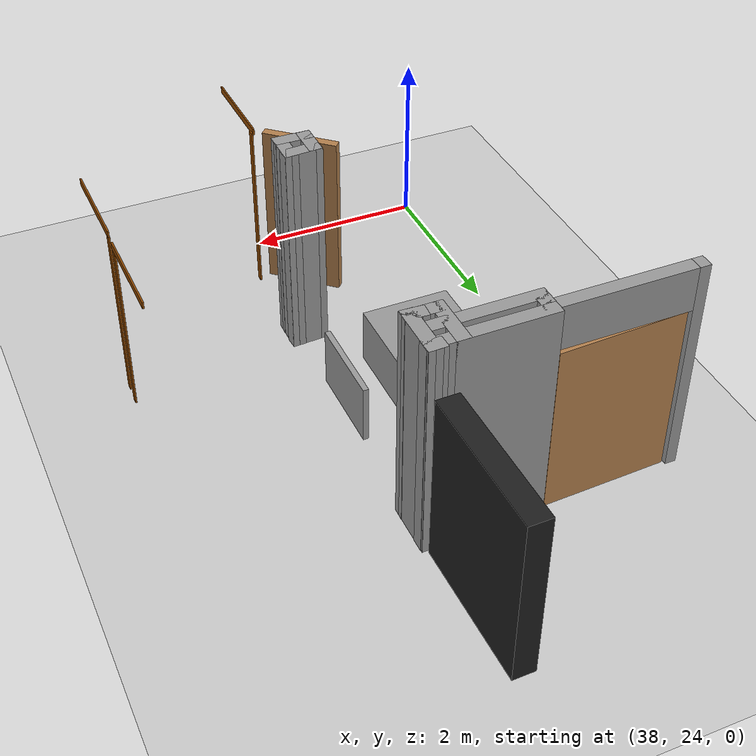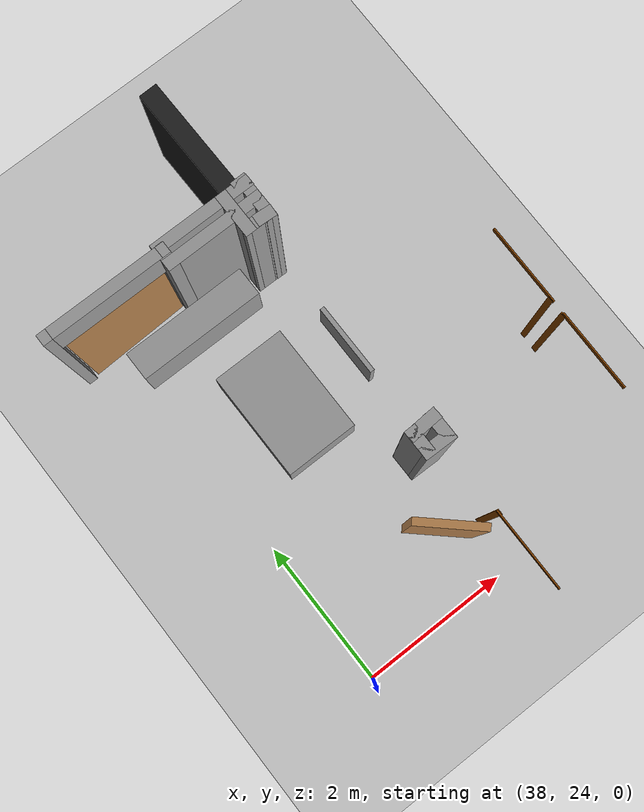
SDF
<sdf version="1.6">
 <world name="default">
  <model name="ground_plane">
   <static>1</static>
   <link name="link">
    <collision name="collision">
     <geometry><plane><normal>0 0 1</normal><size>100 100</size></plane></geometry>
     <surface><friction><ode><mu>100</mu><mu2>50</mu2></ode></friction></surface>
    </collision>
    <visual name="visual">
     <cast_shadows>0</cast_shadows>
     <geometry><plane><normal>0 0 1</normal><size>100 100</size></plane></geometry>
     <material>
      <script><uri>file://media/materials/scripts/gazebo.material</uri><name>Gazebo/Grey</name></script>
     </material>
    </visual>
   </link>
  </model>
  <model name="CVSSP">
   <pose>23.8714 24.094 0 0 -0 0</pose>
   <link name="Wall_10">
    <collision name="Wall_10_Collision">
     <geometry><box><size>0.244894 0.15 2.5</size></box></geometry>
     <pose>0 0 1.25 0 -0 0</pose>
    </collision>
    <visual name="Wall_10_Visual">
     <pose>0 0 1.25 0 -0 0</pose>
     <geometry><box><size>0.244894 0.15 2.5</size></box></geometry>
     <material>
      <script><uri>file://media/materials/scripts/gazebo.material</uri><name>Gazebo/Grey</name></script>
      <ambient>1 1 1 1</ambient>
     </material>
    </visual>
    <pose>16.3427 4.74414 0 0 -0 3.0813</pose>
   </link>
   <link name="Wall_103">
    <pose>14.4193 5.12692 0 0 -0 3.13861</pose>
    <visual name="Wall_103_Visual_0">
     <pose>-0.803949 0 1.25 0 -0 0</pose>
     <geometry><box><size>0.113401 0.15 2.5</size></box></geometry>
     <material>
      <script><uri>file://media/materials/scripts/gazebo.material</uri><name>Gazebo/Grey</name></script>
      <ambient>1 1 1 1</ambient>
     </material>
    </visual>
    <collision name="Wall_103_Collision_0">
     <geometry><box><size>0.113401 0.15 2.5</size></box></geometry>
     <pose>-0.803949 0 1.25 0 -0 0</pose>
    </collision>
    <visual name="Wall_103_Visual_1">
     <pose>0.799121 0 1.25 0 -0 0</pose>
     <geometry><box><size>0.123058 0.15 2.5</size></box></geometry>
     <material>
      <script><uri>file://media/materials/scripts/gazebo.material</uri><name>Gazebo/Grey</name></script>
      <ambient>1 1 1 1</ambient>
     </material>
    </visual>
    <collision name="Wall_103_Collision_1">
     <geometry><box><size>0.123058 0.15 2.5</size></box></geometry>
     <pose>0.799121 0 1.25 0 -0 0</pose>
    </collision>
    <visual name="Wall_103_Visual_2">
     <pose>-0.004828 0 2.25 0 -0 0</pose>
     <geometry><box><size>1.48484 0.15 0.5</size></box></geometry>
     <material>
      <script><uri>file://media/materials/scripts/gazebo.material</uri><name>Gazebo/Grey</name></script>
      <ambient>1 1 1 1</ambient>
     </material>
    </visual>
    <collision name="Wall_103_Collision_2">
     <geometry><box><size>1.48484 0.15 0.5</size></box></geometry>
     <pose>-0.004828 0 2.25 0 -0 0</pose>
    </collision>
   </link>
   <link name="Wall_105">
    <collision name="Wall_105_Collision">
     <geometry><box><size>0.321526 0.15 2.5</size></box></geometry>
     <pose>0 0 1.25 0 -0 0</pose>
    </collision>
    <visual name="Wall_105_Visual">
     <pose>0 0 1.25 0 -0 0</pose>
     <geometry><box><size>0.321526 0.15 2.5</size></box></geometry>
     <material>
      <script><uri>file://media/materials/scripts/gazebo.material</uri><name>Gazebo/Grey</name></script>
      <ambient>1 1 1 1</ambient>
     </material>
    </visual>
    <pose>15.205 5.04453 0 0 0 -1.5708</pose>
   </link>
   <link name="Wall_106">
    <collision name="Wall_106_Collision">
     <geometry><box><size>1.33354 0.15 2.5</size></box></geometry>
     <pose>0 0 1.25 0 -0 0</pose>
    </collision>
    <visual name="Wall_106_Visual">
     <pose>0 0 1.25 0 -0 0</pose>
     <geometry><box><size>1.33354 0.15 2.5</size></box></geometry>
     <material>
      <script><uri>file://media/materials/scripts/gazebo.material</uri><name>Gazebo/Grey</name></script>
      <ambient>1 1 1 1</ambient>
     </material>
    </visual>
    <pose>15.7968 4.95877 0 0 -0 0</pose>
   </link>
   <link name="Wall_108">
    <collision name="Wall_108_Collision">
     <geometry><box><size>0.336995 0.15 2.5</size></box></geometry>
     <pose>0 0 1.25 0 -0 0</pose>
    </collision>
    <visual name="Wall_108_Visual">
     <pose>0 0 1.25 0 -0 0</pose>
     <geometry><box><size>0.336995 0.15 2.5</size></box></geometry>
     <material>
      <script><uri>file://media/materials/scripts/gazebo.material</uri><name>Gazebo/Grey</name></script>
      <ambient>1 1 1 1</ambient>
     </material>
    </visual>
    <pose>16.2019 4.74711 0 0 -0 3.1404</pose>
   </link>
   <link name="Wall_109">
    <collision name="Wall_109_Collision">
     <geometry><box><size>0.578815 0.15 2.5</size></box></geometry>
     <pose>0 0 1.25 0 -0 0</pose>
    </collision>
    <visual name="Wall_109_Visual">
     <pose>0 0 1.25 0 -0 0</pose>
     <geometry><box><size>0.578815 0.15 2.5</size></box></geometry>
     <material>
      <script><uri>file://media/materials/scripts/gazebo.material</uri><name>Gazebo/Grey</name></script>
      <ambient>1 1 1 1</ambient>
     </material>
    </visual>
    <pose>16.1084 4.96163 0 0 -0 1.5708</pose>
   </link>
   <link name="Wall_110">
    <collision name="Wall_110_Collision">
     <geometry><box><size>0.435877 0.15 2.5</size></box></geometry>
     <pose>0 0 1.25 0 -0 0</pose>
    </collision>
    <visual name="Wall_110_Visual">
     <pose>0 0 1.25 0 -0 0</pose>
     <geometry><box><size>0.435877 0.15 2.5</size></box></geometry>
     <material>
      <script><uri>file://media/materials/scripts/gazebo.material</uri><name>Gazebo/Grey</name></script>
      <ambient>1 1 1 1</ambient>
     </material>
    </visual>
    <pose>16.2513 5.17604 0 0 -0 0</pose>
   </link>
   <link name="Wall_112">
    <collision name="Wall_112_Collision">
     <geometry><box><size>1.05344 0.15 2.5</size></box></geometry>
     <pose>0 0 1.25 0 -0 0</pose>
    </collision>
    <visual name="Wall_112_Visual">
     <pose>0 0 1.25 0 -0 0</pose>
     <geometry><box><size>1.05344 0.15 2.5</size></box></geometry>
     <material>
      <script><uri>file://media/materials/scripts/gazebo.material</uri><name>Gazebo/Grey</name></script>
      <ambient>1 1 1 1</ambient>
     </material>
    </visual>
    <pose>15.6567 5.17604 0 0 -0 3.14159</pose>
   </link>
   <link name="Wall_729">
    <collision name="Wall_729_Collision">
     <geometry><box><size>0.409263 0.15 2.5</size></box></geometry>
     <pose>0 0 1.25 0 -0 0</pose>
    </collision>
    <visual name="Wall_729_Visual">
     <pose>0 0 1.25 0 -0 0</pose>
     <geometry><box><size>0.409263 0.15 2.5</size></box></geometry>
     <material>
      <script><uri>file://media/materials/scripts/gazebo.material</uri><name>Gazebo/Grey</name></script>
      <ambient>1 1 1 1</ambient>
     </material>
    </visual>
    <pose>16.3949 1.72388 0 0 -0 1.57329</pose>
   </link>
   <link name="Wall_730">
    <collision name="Wall_730_Collision">
     <geometry><box><size>0.423174 0.15 2.5</size></box></geometry>
     <pose>0 0 1.25 0 -0 0</pose>
    </collision>
    <visual name="Wall_730_Visual">
     <pose>0 0 1.25 0 -0 0</pose>
     <geometry><box><size>0.423174 0.15 2.5</size></box></geometry>
     <material>
      <script><uri>file://media/materials/scripts/gazebo.material</uri><name>Gazebo/Grey</name></script>
      <ambient>1 1 1 1</ambient>
     </material>
    </visual>
    <pose>16.2619 1.84596 0 0 0 -3.08621</pose>
   </link>
   <link name="Wall_731">
    <collision name="Wall_731_Collision">
     <geometry><box><size>0.388455 0.15 2.5</size></box></geometry>
     <pose>0 0 1.25 0 -0 0</pose>
    </collision>
    <visual name="Wall_731_Visual">
     <pose>0 0 1.25 0 -0 0</pose>
     <geometry><box><size>0.388455 0.15 2.5</size></box></geometry>
     <material>
      <script><uri>file://media/materials/scripts/gazebo.material</uri><name>Gazebo/Grey</name></script>
      <ambient>1 1 1 1</ambient>
     </material>
    </visual>
    <pose>16.1221 1.71917 0 0 0 -1.56809</pose>
   </link>
   <link name="Wall_732">
    <collision name="Wall_732_Collision">
     <geometry><box><size>0.422814 0.15 2.5</size></box></geometry>
     <pose>0 0 1.25 0 -0 0</pose>
    </collision>
    <visual name="Wall_732_Visual">
     <pose>0 0 1.25 0 -0 0</pose>
     <geometry><box><size>0.422814 0.15 2.5</size></box></geometry>
     <material>
      <script><uri>file://media/materials/scripts/gazebo.material</uri><name>Gazebo/Grey</name></script>
      <ambient>1 1 1 1</ambient>
     </material>
    </visual>
    <pose>16.2588 1.5934 0 0 0 -0.020841</pose>
   </link>
   <link name="Wall_8">
    <collision name="Wall_8_Collision">
     <geometry><box><size>0.200072 0.15 2.5</size></box></geometry>
     <pose>0 0 1.25 0 -0 0</pose>
    </collision>
    <visual name="Wall_8_Visual">
     <pose>0 0 1.25 0 -0 0</pose>
     <geometry><box><size>0.200072 0.15 2.5</size></box></geometry>
     <material>
      <script><uri>file://media/materials/scripts/gazebo.material</uri><name>Gazebo/Grey</name></script>
      <ambient>1 1 1 1</ambient>
     </material>
    </visual>
    <pose>16.3651 5.20082 0 0 -0 0.028929</pose>
   </link>
   <link name="Wall_9">
    <collision name="Wall_9_Collision">
     <geometry><box><size>0.610308 0.15 2.5</size></box></geometry>
     <pose>0 0 1.25 0 -0 0</pose>
    </collision>
    <visual name="Wall_9_Visual">
     <pose>0 0 1.25 0 -0 0</pose>
     <geometry><box><size>0.610308 0.15 2.5</size></box></geometry>
     <material>
      <script><uri>file://media/materials/scripts/gazebo.material</uri><name>Gazebo/Grey</name></script>
      <ambient>1 1 1 1</ambient>
     </material>
    </visual>
    <pose>16.3901 4.97141 0 0 0 -1.5708</pose>
   </link>
   <static>1</static>
  </model>
  <model name="ply_wood_under_box">
   <link name="link">
    <inertial>
     <mass>1</mass>
     <inertia>
      <ixx>0.166667</ixx>
      <ixy>0</ixy>
      <ixz>0</ixz>
      <iyy>0.166667</iyy>
      <iyz>0</iyz>
      <izz>0.166667</izz>
     </inertia>
    </inertial>
    <gravity>0</gravity>
    <visual name="visual">
     <geometry><box><size>1 1.50222 0.628617</size></box></geometry>
     <material>
      <script><name>Gazebo/Grey</name><uri>file://media/materials/scripts/gazebo.material</uri></script>
      <shader type="pixel"><normal_map>__default__</normal_map></shader>
     </material>
    </visual>
    <collision name="collision">
     <geometry><box><size>1 1.50222 0.628617</size></box></geometry>
     <surface>
      <friction>
       <ode><mu>1</mu><mu2>1</mu2><fdir1>0 0 0</fdir1><slip1>0</slip1><slip2>0</slip2></ode>
       <torsional>
        <coefficient>1</coefficient>
        <patch_radius>0</patch_radius>
        <surface_radius>0</surface_radius>
        <use_patch_radius>1</use_patch_radius>
        <ode><slip>0</slip></ode>
       </torsional>
      </friction>
      <bounce><restitution_coefficient>0</restitution_coefficient><threshold>1e+06</threshold></bounce>
      <contact>
       <collide_without_contact>0</collide_without_contact>
       <collide_without_contact_bitmask>1</collide_without_contact_bitmask>
       <collide_bitmask>1</collide_bitmask>
       <ode>
        <soft_cfm>0</soft_cfm>
        <soft_erp>0.2</soft_erp>
        <kp>1e+13</kp>
        <kd>1</kd>
        <max_vel>0.01</max_vel>
        <min_depth>0</min_depth>
       </ode>
       <bullet>
        <split_impulse>1</split_impulse>
        <split_impulse_penetration_threshold>-0.01</split_impulse_penetration_threshold>
        <soft_cfm>0</soft_cfm>
        <soft_erp>0.2</soft_erp>
        <kp>1e+13</kp>
        <kd>1</kd>
       </bullet>
      </contact>
     </surface>
    </collision>
   </link>
   <static>1</static>
   <pose>39.2228 27.3126 0.362453 0 -0 0</pose>
  </model>
  <model name="plastic_box_0_clone_0">
   <link name="Wall">
    <pose>0 0 0.1985 0 -0 0</pose>
    <inertial>
     <mass>5</mass>
     <inertia><ixx>0.1022</ixx><iyy>0.4107</iyy><izz>0.3815</izz><ixy>0</ixy><ixz>0</ixz><iyz>0</iyz></inertia>
    </inertial>
    <gravity>0</gravity>
    <visual name="Wall_Visual">
     <geometry><box><size>1.75 0.4 0.75</size></box></geometry>
     <material>
      <script><uri>file://media/materials/scripts/gazebo.material</uri><name>Gazebo/Grey</name></script>
      <ambient>1 1 1 1</ambient>
      <shader type="pixel"><normal_map>__default__</normal_map></shader>
      <diffuse>0.7 0.7 0.7 1</diffuse>
      <specular>0.01 0.01 0.01 1</specular>
      <emissive>0 0 0 1</emissive>
     </material>
    </visual>
    <collision name="Wall_Collision">
     <geometry><box><size>1.75 0.4 0.75</size></box></geometry>
     <surface>
      <friction>
       <ode><mu>1</mu><mu2>1</mu2><fdir1>0 0 0</fdir1><slip1>0</slip1><slip2>0</slip2></ode>
       <torsional>
        <coefficient>1</coefficient>
        <patch_radius>0</patch_radius>
        <surface_radius>0</surface_radius>
        <use_patch_radius>1</use_patch_radius>
        <ode><slip>0</slip></ode>
       </torsional>
      </friction>
      <bounce><restitution_coefficient>0</restitution_coefficient><threshold>1e+06</threshold></bounce>
      <contact>
       <collide_without_contact>0</collide_without_contact>
       <collide_without_contact_bitmask>1</collide_without_contact_bitmask>
       <collide_bitmask>1</collide_bitmask>
       <ode>
        <soft_cfm>0</soft_cfm>
        <soft_erp>0.2</soft_erp>
        <kp>1e+13</kp>
        <kd>1</kd>
        <max_vel>0.01</max_vel>
        <min_depth>0</min_depth>
       </ode>
       <bullet>
        <split_impulse>1</split_impulse>
        <split_impulse_penetration_threshold>-0.01</split_impulse_penetration_threshold>
        <soft_cfm>0</soft_cfm>
        <soft_erp>0.2</soft_erp>
        <kp>1e+13</kp>
        <kd>1</kd>
       </bullet>
      </contact>
     </surface>
    </collision>
   </link>
   <static>1</static>
   <pose>38.9213 28.7657 0.249906 0 -0 0</pose>
  </model>
  <model name="basic_ply_door_corrected_clone_0_clone_clone_1">
   <link name="link">
    <pose>-0 0 1.00385 0 -0 0</pose>
    <inertial>
     <mass>0.5167</mass>
     <inertia>
      <ixx>0.00086117</ixx>
      <ixy>0</ixy>
      <ixz>0</ixz>
      <iyy>0.00086117</iyy>
      <iyz>0</iyz>
      <izz>0.00086117</izz>
     </inertia>
    </inertial>
    <gravity>0</gravity>
    <visual name="visual">
     <geometry><box><size>0.88 0.1 1.96</size></box></geometry>
     <material>
      <script><uri>file://media/materials/scripts/gazebo.material</uri><name>Gazebo/Wood</name></script>
      <shader type="pixel"><normal_map>__default__</normal_map></shader>
      <ambient>1 1 1 1</ambient>
      <diffuse>1 1 1 1</diffuse>
      <specular>0.2 0.2 0.2 1</specular>
      <emissive>0 0 0 1</emissive>
     </material>
    </visual>
    <collision name="collision">
     <geometry><box><size>0.88 0.1 1.96</size></box></geometry>
     <surface>
      <friction>
       <ode><mu>1</mu><mu2>1</mu2><fdir1>0 0 0</fdir1><slip1>0</slip1><slip2>0</slip2></ode>
       <torsional>
        <coefficient>1</coefficient>
        <patch_radius>0</patch_radius>
        <surface_radius>0.01</surface_radius>
        <use_patch_radius>0</use_patch_radius>
        <ode><slip>0</slip></ode>
       </torsional>
      </friction>
      <bounce><restitution_coefficient>0</restitution_coefficient><threshold>1e+06</threshold></bounce>
      <contact>
       <collide_without_contact>0</collide_without_contact>
       <collide_without_contact_bitmask>1</collide_without_contact_bitmask>
       <collide_bitmask>1</collide_bitmask>
       <ode>
        <soft_cfm>0</soft_cfm>
        <soft_erp>0.2</soft_erp>
        <kp>100000</kp>
        <kd>100</kd>
        <max_vel>100</max_vel>
        <min_depth>0.001</min_depth>
       </ode>
       <bullet>
        <split_impulse>1</split_impulse>
        <split_impulse_penetration_threshold>-0.01</split_impulse_penetration_threshold>
        <soft_cfm>0</soft_cfm>
        <soft_erp>0.2</soft_erp>
        <kp>100000</kp>
        <kd>100</kd>
       </bullet>
      </contact>
     </surface>
    </collision>
   </link>
   <static>1</static>
   <pose>39.7565 24.918 -0.00101 0 -0 2.40024</pose>
  </model>
  <model name="metal_door_wide">
   <link name="link">
    <inertial>
     <mass>1</mass>
     <inertia>
      <ixx>0.166667</ixx>
      <ixy>0</ixy>
      <ixz>0</ixz>
      <iyy>0.166667</iyy>
      <iyz>0</iyz>
      <izz>0.166667</izz>
     </inertia>
    </inertial>
    <gravity>0</gravity>
    <visual name="visual">
     <geometry><box><size>0.249393 1.61603 1.94787</size></box></geometry>
     <material>
      <script><name>Gazebo/Black</name><uri>file://media/materials/scripts/gazebo.material</uri></script>
      <shader type="pixel"><normal_map>__default__</normal_map></shader>
      <ambient>0.01 0.001 0.001 1</ambient>
      <diffuse>0.7 0.7 0.7 1</diffuse>
      <specular>0.01 0.01 0.01 1</specular>
      <emissive>0 0 0 1</emissive>
     </material>
    </visual>
    <collision name="collision">
     <geometry><box><size>0.249393 1.61603 1.94787</size></box></geometry>
     <surface>
      <friction>
       <ode><mu>1</mu><mu2>1</mu2><fdir1>0 0 0</fdir1><slip1>0</slip1><slip2>0</slip2></ode>
       <torsional>
        <coefficient>1</coefficient>
        <patch_radius>0</patch_radius>
        <surface_radius>0</surface_radius>
        <use_patch_radius>1</use_patch_radius>
        <ode><slip>0</slip></ode>
       </torsional>
      </friction>
      <bounce><restitution_coefficient>0</restitution_coefficient><threshold>1e+06</threshold></bounce>
      <contact>
       <collide_without_contact>0</collide_without_contact>
       <collide_without_contact_bitmask>1</collide_without_contact_bitmask>
       <collide_bitmask>1</collide_bitmask>
       <ode>
        <soft_cfm>0</soft_cfm>
        <soft_erp>0.2</soft_erp>
        <kp>1e+13</kp>
        <kd>1</kd>
        <max_vel>0.01</max_vel>
        <min_depth>0</min_depth>
       </ode>
       <bullet>
        <split_impulse>1</split_impulse>
        <split_impulse_penetration_threshold>-0.01</split_impulse_penetration_threshold>
        <soft_cfm>0</soft_cfm>
        <soft_erp>0.2</soft_erp>
        <kp>1e+13</kp>
        <kd>1</kd>
       </bullet>
      </contact>
     </surface>
    </collision>
   </link>
   <static>1</static>
   <pose>40.1518 30.2272 1.00357 -0.00287 -0.001978 0.014033</pose>
  </model>
  <model name="metal_radiator">
   <link name="link">
    <inertial>
     <mass>1</mass>
     <inertia>
      <ixx>0.166667</ixx>
      <ixy>0</ixy>
      <ixz>0</ixz>
      <iyy>0.166667</iyy>
      <iyz>0</iyz>
      <izz>0.166667</izz>
     </inertia>
    </inertial>
    <gravity>0</gravity>
    <visual name="visual">
     <geometry><box><size>0.062327 1 0.668502</size></box></geometry>
     <material>
      <script><name>Gazebo/Grey</name><uri>file://media/materials/scripts/gazebo.material</uri></script>
      <shader type="pixel"><normal_map>__default__</normal_map></shader>
      <emissive>0 0 0 1</emissive>
      <ambient>1 1 1 1</ambient>
      <diffuse>0.7 0.7 0.7 1</diffuse>
      <specular>0.01 0.01 0.01 1</specular>
      <lighting>0</lighting>
     </material>
    </visual>
    <collision name="collision">
     <geometry><box><size>0.062327 1 0.668502</size></box></geometry>
     <surface>
      <friction>
       <ode><mu>1</mu><mu2>1</mu2><fdir1>0 0 0</fdir1><slip1>0</slip1><slip2>0</slip2></ode>
       <torsional>
        <coefficient>1</coefficient>
        <patch_radius>0</patch_radius>
        <surface_radius>0</surface_radius>
        <use_patch_radius>1</use_patch_radius>
        <ode><slip>0</slip></ode>
       </torsional>
      </friction>
      <bounce><restitution_coefficient>0</restitution_coefficient><threshold>1e+06</threshold></bounce>
      <contact>
       <collide_without_contact>0</collide_without_contact>
       <collide_without_contact_bitmask>1</collide_without_contact_bitmask>
       <collide_bitmask>1</collide_bitmask>
       <ode>
        <soft_cfm>0</soft_cfm>
        <soft_erp>0.2</soft_erp>
        <kp>1e+13</kp>
        <kd>1</kd>
        <max_vel>0.01</max_vel>
        <min_depth>0</min_depth>
       </ode>
       <bullet>
        <split_impulse>1</split_impulse>
        <split_impulse_penetration_threshold>-0.01</split_impulse_penetration_threshold>
        <soft_cfm>0</soft_cfm>
        <soft_erp>0.2</soft_erp>
        <kp>1e+13</kp>
        <kd>1</kd>
       </bullet>
      </contact>
     </surface>
    </collision>
   </link>
   <static>1</static>
   <pose>40.2852 27.4289 0.545875 0 -0 0</pose>
  </model>
  <model name="basic_ply_door_corrected_wider">
   <link name="link">
    <pose>0.319611 -0 1.00385 0 -0 0.034884</pose>
    <inertial>
     <mass>0.5167</mass>
     <inertia>
      <ixx>0.00086117</ixx>
      <ixy>0</ixy>
      <ixz>0</ixz>
      <iyy>0.00086117</iyy>
      <iyz>0</iyz>
      <izz>0.00086117</izz>
     </inertia>
    </inertial>
    <visual name="visual">
     <geometry><box><size>1.4 0.1 1.96</size></box></geometry>
     <material>
      <script><uri>file://media/materials/scripts/gazebo.material</uri><name>Gazebo/Wood</name></script>
      <shader type="pixel"><normal_map>__default__</normal_map></shader>
      <ambient>1 1 1 1</ambient>
      <diffuse>1 1 1 1</diffuse>
      <specular>0.2 0.2 0.2 1</specular>
      <emissive>0 0 0 1</emissive>
     </material>
    </visual>
    <collision name="collision">
     <geometry><box><size>0.88 0.1 1.96</size></box></geometry>
     <surface>
      <friction>
       <ode><mu>1</mu><mu2>1</mu2><fdir1>0 0 0</fdir1><slip1>0</slip1><slip2>0</slip2></ode>
       <torsional>
        <coefficient>1</coefficient>
        <patch_radius>0</patch_radius>
        <surface_radius>0.01</surface_radius>
        <use_patch_radius>0</use_patch_radius>
        <ode><slip>0</slip></ode>
       </torsional>
      </friction>
      <bounce><restitution_coefficient>0</restitution_coefficient><threshold>1e+06</threshold></bounce>
      <contact>
       <collide_without_contact>0</collide_without_contact>
       <collide_without_contact_bitmask>1</collide_without_contact_bitmask>
       <collide_bitmask>1</collide_bitmask>
       <ode>
        <soft_cfm>0</soft_cfm>
        <soft_erp>0.2</soft_erp>
        <kp>100000</kp>
        <kd>100</kd>
        <max_vel>100</max_vel>
        <min_depth>0.001</min_depth>
       </ode>
       <bullet>
        <split_impulse>1</split_impulse>
        <split_impulse_penetration_threshold>-0.01</split_impulse_penetration_threshold>
        <soft_cfm>0</soft_cfm>
        <soft_erp>0.2</soft_erp>
        <kp>100000</kp>
        <kd>100</kd>
       </bullet>
      </contact>
     </surface>
    </collision>
   </link>
   <static>1</static>
   <pose>37.9694 29.2523 -0 0 -0 0</pose>
  </model>
  <model name="oak_frame_0_clone">
   <link name="link">
    <inertial>
     <mass>1</mass>
     <inertia>
      <ixx>0.166667</ixx>
      <ixy>0</ixy>
      <ixz>0</ixz>
      <iyy>0.166667</iyy>
      <iyz>0</iyz>
      <izz>0.166667</izz>
     </inertia>
    </inertial>
    <visual name="visual">
     <geometry><box><size>0.018685 0.076446 2.026</size></box></geometry>
     <material>
      <script><name>Gazebo/Grey</name><uri>file://media/materials/scripts/gazebo.material</uri></script>
      <shader type="pixel"><normal_map>__default__</normal_map></shader>
      <diffuse>0.58 0.29 0 0</diffuse>
      <ambient>0.58 0.29 0 1</ambient>
      <specular>0.01 0.01 0.01 1</specular>
      <emissive>0 0 0 1</emissive>
     </material>
    </visual>
    <collision name="collision">
     <geometry><box><size>0.018685 0.076446 2.026</size></box></geometry>
     <surface>
      <friction>
       <ode><mu>1</mu><mu2>1</mu2><fdir1>0 0 0</fdir1><slip1>0</slip1><slip2>0</slip2></ode>
       <torsional>
        <coefficient>1</coefficient>
        <patch_radius>0</patch_radius>
        <surface_radius>0</surface_radius>
        <use_patch_radius>1</use_patch_radius>
        <ode><slip>0</slip></ode>
       </torsional>
      </friction>
      <bounce><restitution_coefficient>0</restitution_coefficient><threshold>1e+06</threshold></bounce>
      <contact>
       <collide_without_contact>0</collide_without_contact>
       <collide_without_contact_bitmask>1</collide_without_contact_bitmask>
       <collide_bitmask>1</collide_bitmask>
       <ode>
        <soft_cfm>0</soft_cfm>
        <soft_erp>0.2</soft_erp>
        <kp>1e+13</kp>
        <kd>1</kd>
        <max_vel>0.01</max_vel>
        <min_depth>0</min_depth>
       </ode>
       <bullet>
        <split_impulse>1</split_impulse>
        <split_impulse_penetration_threshold>-0.01</split_impulse_penetration_threshold>
        <soft_cfm>0</soft_cfm>
        <soft_erp>0.2</soft_erp>
        <kp>1e+13</kp>
        <kd>1</kd>
       </bullet>
      </contact>
     </surface>
    </collision>
   </link>
   <static>1</static>
   <pose>40.2515 24.6922 1.03242 0 -0 0</pose>
  </model>
  <model name="oak_frame_0_clone_0">
   <link name="link">
    <inertial>
     <mass>1</mass>
     <inertia>
      <ixx>0.166667</ixx>
      <ixy>0</ixy>
      <ixz>0</ixz>
      <iyy>0.166667</iyy>
      <iyz>0</iyz>
      <izz>0.166667</izz>
     </inertia>
    </inertial>
    <visual name="visual">
     <geometry><box><size>0.018685 0.076446 1.08038</size></box></geometry>
     <material>
      <script><name>Gazebo/Grey</name><uri>file://media/materials/scripts/gazebo.material</uri></script>
      <shader type="pixel"><normal_map>__default__</normal_map></shader>
      <diffuse>0.58 0.29 0 0</diffuse>
      <ambient>0.58 0.29 0 1</ambient>
      <specular>0.01 0.01 0.01 1</specular>
      <emissive>0 0 0 1</emissive>
     </material>
    </visual>
    <collision name="collision">
     <geometry><box><size>0.018685 0.076446 1.08038</size></box></geometry>
     <surface>
      <friction>
       <ode><mu>1</mu><mu2>1</mu2><fdir1>0 0 0</fdir1><slip1>0</slip1><slip2>0</slip2></ode>
       <torsional>
        <coefficient>1</coefficient>
        <patch_radius>0</patch_radius>
        <surface_radius>0</surface_radius>
        <use_patch_radius>1</use_patch_radius>
        <ode><slip>0</slip></ode>
       </torsional>
      </friction>
      <bounce><restitution_coefficient>0</restitution_coefficient><threshold>1e+06</threshold></bounce>
      <contact>
       <collide_without_contact>0</collide_without_contact>
       <collide_without_contact_bitmask>1</collide_without_contact_bitmask>
       <collide_bitmask>1</collide_bitmask>
       <ode>
        <soft_cfm>0</soft_cfm>
        <soft_erp>0.2</soft_erp>
        <kp>1e+13</kp>
        <kd>1</kd>
        <max_vel>0.01</max_vel>
        <min_depth>0</min_depth>
       </ode>
       <bullet>
        <split_impulse>1</split_impulse>
        <split_impulse_penetration_threshold>-0.01</split_impulse_penetration_threshold>
        <soft_cfm>0</soft_cfm>
        <soft_erp>0.2</soft_erp>
        <kp>1e+13</kp>
        <kd>1</kd>
       </bullet>
      </contact>
     </surface>
    </collision>
   </link>
   <static>1</static>
   <pose>40.2332 24.1894 2.05002 -1.55236 0 0</pose>
  </model>
  <model name="oak_frame_0_clone_clone">
   <link name="link">
    <inertial>
     <mass>1</mass>
     <inertia>
      <ixx>0.166667</ixx>
      <ixy>0</ixy>
      <ixz>0</ixz>
      <iyy>0.166667</iyy>
      <iyz>0</iyz>
      <izz>0.166667</izz>
     </inertia>
    </inertial>
    <visual name="visual">
     <geometry><box><size>0.018685 0.076446 2.026</size></box></geometry>
     <material>
      <script><name>Gazebo/Grey</name><uri>file://media/materials/scripts/gazebo.material</uri></script>
      <shader type="pixel"><normal_map>__default__</normal_map></shader>
      <diffuse>0.58 0.29 0 0</diffuse>
      <ambient>0.58 0.29 0 1</ambient>
      <specular>0.01 0.01 0.01 1</specular>
      <emissive>0 0 0 1</emissive>
     </material>
    </visual>
    <collision name="collision">
     <geometry><box><size>0.018685 0.076446 2.026</size></box></geometry>
     <surface>
      <friction>
       <ode><mu>1</mu><mu2>1</mu2><fdir1>0 0 0</fdir1><slip1>0</slip1><slip2>0</slip2></ode>
       <torsional>
        <coefficient>1</coefficient>
        <patch_radius>0</patch_radius>
        <surface_radius>0</surface_radius>
        <use_patch_radius>1</use_patch_radius>
        <ode><slip>0</slip></ode>
       </torsional>
      </friction>
      <bounce><restitution_coefficient>0</restitution_coefficient><threshold>1e+06</threshold></bounce>
      <contact>
       <collide_without_contact>0</collide_without_contact>
       <collide_without_contact_bitmask>1</collide_without_contact_bitmask>
       <collide_bitmask>1</collide_bitmask>
       <ode>
        <soft_cfm>0</soft_cfm>
        <soft_erp>0.2</soft_erp>
        <kp>1e+13</kp>
        <kd>1</kd>
        <max_vel>0.01</max_vel>
        <min_depth>0</min_depth>
       </ode>
       <bullet>
        <split_impulse>1</split_impulse>
        <split_impulse_penetration_threshold>-0.01</split_impulse_penetration_threshold>
        <soft_cfm>0</soft_cfm>
        <soft_erp>0.2</soft_erp>
        <kp>1e+13</kp>
        <kd>1</kd>
       </bullet>
      </contact>
     </surface>
    </collision>
   </link>
   <static>1</static>
   <pose>42.2231 25.9652 1.03242 0 -0 0</pose>
  </model>
  <model name="oak_frame_0_clone_clone_1">
   <link name="link">
    <inertial>
     <mass>1</mass>
     <inertia>
      <ixx>0.166667</ixx>
      <ixy>0</ixy>
      <ixz>0</ixz>
      <iyy>0.166667</iyy>
      <iyz>0</iyz>
      <izz>0.166667</izz>
     </inertia>
    </inertial>
    <visual name="visual">
     <geometry><box><size>0.018685 0.076446 2.026</size></box></geometry>
     <material>
      <script><name>Gazebo/Grey</name><uri>file://media/materials/scripts/gazebo.material</uri></script>
      <shader type="pixel"><normal_map>__default__</normal_map></shader>
      <diffuse>0.58 0.29 0 0</diffuse>
      <ambient>0.58 0.29 0 1</ambient>
      <specular>0.01 0.01 0.01 1</specular>
      <emissive>0 0 0 1</emissive>
     </material>
    </visual>
    <collision name="collision">
     <geometry><box><size>0.018685 0.076446 2.026</size></box></geometry>
     <surface>
      <friction>
       <ode><mu>1</mu><mu2>1</mu2><fdir1>0 0 0</fdir1><slip1>0</slip1><slip2>0</slip2></ode>
       <torsional>
        <coefficient>1</coefficient>
        <patch_radius>0</patch_radius>
        <surface_radius>0</surface_radius>
        <use_patch_radius>1</use_patch_radius>
        <ode><slip>0</slip></ode>
       </torsional>
      </friction>
      <bounce><restitution_coefficient>0</restitution_coefficient><threshold>1e+06</threshold></bounce>
      <contact>
       <collide_without_contact>0</collide_without_contact>
       <collide_without_contact_bitmask>1</collide_without_contact_bitmask>
       <collide_bitmask>1</collide_bitmask>
       <ode>
        <soft_cfm>0</soft_cfm>
        <soft_erp>0.2</soft_erp>
        <kp>1e+13</kp>
        <kd>1</kd>
        <max_vel>0.01</max_vel>
        <min_depth>0</min_depth>
       </ode>
       <bullet>
        <split_impulse>1</split_impulse>
        <split_impulse_penetration_threshold>-0.01</split_impulse_penetration_threshold>
        <soft_cfm>0</soft_cfm>
        <soft_erp>0.2</soft_erp>
        <kp>1e+13</kp>
        <kd>1</kd>
       </bullet>
      </contact>
     </surface>
    </collision>
   </link>
   <static>1</static>
   <pose>42.2324 26.1959 1.03242 0 -0 0</pose>
  </model>
  <model name="oak_frame_0_clone_0_clone">
   <link name="link">
    <inertial>
     <mass>1</mass>
     <inertia>
      <ixx>0.166667</ixx>
      <ixy>0</ixy>
      <ixz>0</ixz>
      <iyy>0.166667</iyy>
      <iyz>0</iyz>
      <izz>0.166667</izz>
     </inertia>
    </inertial>
    <visual name="visual">
     <geometry><box><size>0.018685 0.076446 1.08038</size></box></geometry>
     <material>
      <script><name>Gazebo/Grey</name><uri>file://media/materials/scripts/gazebo.material</uri></script>
      <shader type="pixel"><normal_map>__default__</normal_map></shader>
      <diffuse>0.58 0.29 0 0</diffuse>
      <ambient>0.58 0.29 0 1</ambient>
      <specular>0.01 0.01 0.01 1</specular>
      <emissive>0 0 0 1</emissive>
     </material>
    </visual>
    <collision name="collision">
     <geometry><box><size>0.018685 0.076446 1.08038</size></box></geometry>
     <surface>
      <friction>
       <ode><mu>1</mu><mu2>1</mu2><fdir1>0 0 0</fdir1><slip1>0</slip1><slip2>0</slip2></ode>
       <torsional>
        <coefficient>1</coefficient>
        <patch_radius>0</patch_radius>
        <surface_radius>0</surface_radius>
        <use_patch_radius>1</use_patch_radius>
        <ode><slip>0</slip></ode>
       </torsional>
      </friction>
      <bounce><restitution_coefficient>0</restitution_coefficient><threshold>1e+06</threshold></bounce>
      <contact>
       <collide_without_contact>0</collide_without_contact>
       <collide_without_contact_bitmask>1</collide_without_contact_bitmask>
       <collide_bitmask>1</collide_bitmask>
       <ode>
        <soft_cfm>0</soft_cfm>
        <soft_erp>0.2</soft_erp>
        <kp>1e+13</kp>
        <kd>1</kd>
        <max_vel>0.01</max_vel>
        <min_depth>0</min_depth>
       </ode>
       <bullet>
        <split_impulse>1</split_impulse>
        <split_impulse_penetration_threshold>-0.01</split_impulse_penetration_threshold>
        <soft_cfm>0</soft_cfm>
        <soft_erp>0.2</soft_erp>
        <kp>1e+13</kp>
        <kd>1</kd>
       </bullet>
      </contact>
     </surface>
    </collision>
   </link>
   <static>1</static>
   <pose>42.2236 25.4423 2.05002 -1.55236 0 0</pose>
  </model>
  <model name="oak_frame_0_clone_0_clone_0">
   <link name="link">
    <inertial>
     <mass>1</mass>
     <inertia>
      <ixx>0.166667</ixx>
      <ixy>0</ixy>
      <ixz>0</ixz>
      <iyy>0.166667</iyy>
      <iyz>0</iyz>
      <izz>0.166667</izz>
     </inertia>
    </inertial>
    <visual name="visual">
     <geometry><box><size>0.018685 0.076446 1.08038</size></box></geometry>
     <material>
      <script><name>Gazebo/Grey</name><uri>file://media/materials/scripts/gazebo.material</uri></script>
      <shader type="pixel"><normal_map>__default__</normal_map></shader>
      <diffuse>0.58 0.29 0 0</diffuse>
      <ambient>0.58 0.29 0 1</ambient>
      <specular>0.01 0.01 0.01 1</specular>
      <emissive>0 0 0 1</emissive>
     </material>
    </visual>
    <collision name="collision">
     <geometry><box><size>0.018685 0.076446 1.08038</size></box></geometry>
     <surface>
      <friction>
       <ode><mu>1</mu><mu2>1</mu2><fdir1>0 0 0</fdir1><slip1>0</slip1><slip2>0</slip2></ode>
       <torsional>
        <coefficient>1</coefficient>
        <patch_radius>0</patch_radius>
        <surface_radius>0</surface_radius>
        <use_patch_radius>1</use_patch_radius>
        <ode><slip>0</slip></ode>
       </torsional>
      </friction>
      <bounce><restitution_coefficient>0</restitution_coefficient><threshold>1e+06</threshold></bounce>
      <contact>
       <collide_without_contact>0</collide_without_contact>
       <collide_without_contact_bitmask>1</collide_without_contact_bitmask>
       <collide_bitmask>1</collide_bitmask>
       <ode>
        <soft_cfm>0</soft_cfm>
        <soft_erp>0.2</soft_erp>
        <kp>1e+13</kp>
        <kd>1</kd>
        <max_vel>0.01</max_vel>
        <min_depth>0</min_depth>
       </ode>
       <bullet>
        <split_impulse>1</split_impulse>
        <split_impulse_penetration_threshold>-0.01</split_impulse_penetration_threshold>
        <soft_cfm>0</soft_cfm>
        <soft_erp>0.2</soft_erp>
        <kp>1e+13</kp>
        <kd>1</kd>
       </bullet>
      </contact>
     </surface>
    </collision>
   </link>
   <static>1</static>
   <pose>42.2332 26.6847 2.05002 -1.55236 0 0</pose>
  </model>
 </world>
</sdf>
